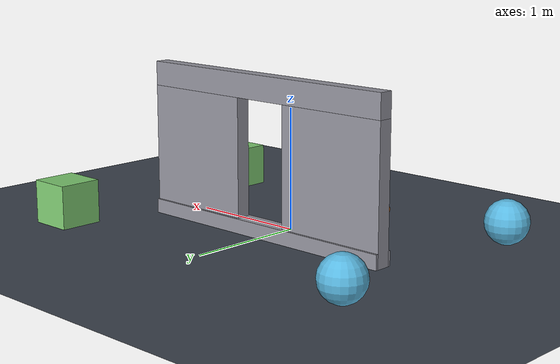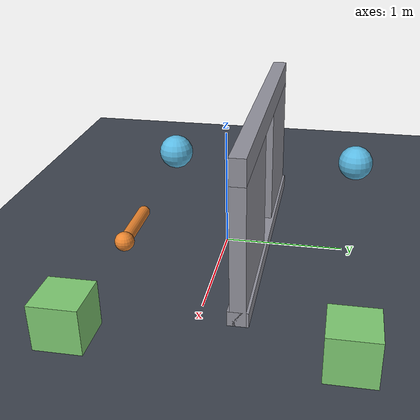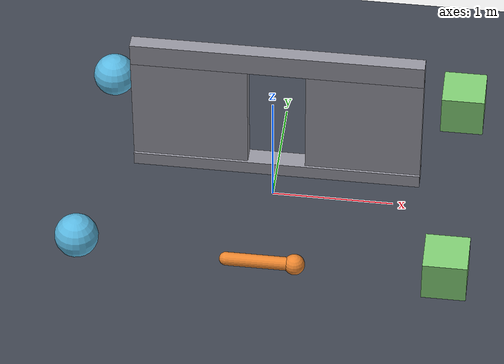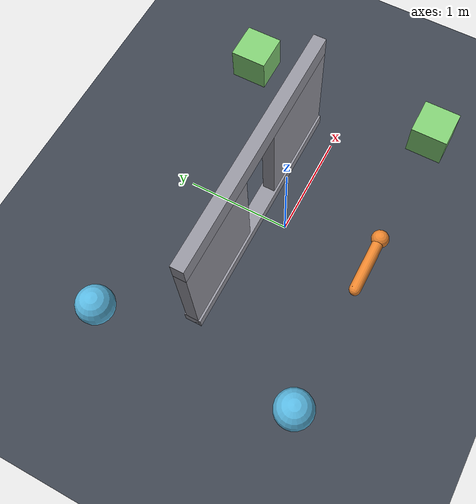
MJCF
<mujoco model="perturb_ghost">
  <compiler angle="degree" autolimits="true"/>

  <visual>
    <headlight ambient="0.26 0.26 0.26" diffuse="0.42 0.42 0.42" specular="0.4 0.4 0.4"/>
    <quality shadowsize="4096" numslices="28" numstacks="16"/>
    <map znear="0.02" zfar="40" shadowclip="1.2" shadowscale="0.7"/>
  </visual>

  <asset>
    <texture name="grid" type="2d" builtin="checker" width="512" height="512"
             rgb1="0.19 0.21 0.25" rgb2="0.29 0.32 0.37"/>
    <material name="grid" texture="grid" texrepeat="1 1" texuniform="true"/>
    <material name="rod" rgba="0.92 0.52 0.18 1" specular="0.6" shininess="0.7"/>
    <material name="wall" rgba="0.58 0.58 0.62 1" specular="0.15" shininess="0.25"/>
    <material name="ref" rgba="0.35 0.72 0.88 1" specular="0.5" shininess="0.6"/>
    <material name="ref2" rgba="0.50 0.80 0.45 1" specular="0.5" shininess="0.6"/>
  </asset>

  <worldbody>
    <light name="sun" type="directional" pos="2 -3.5 5" dir="-0.3 0.5 -1"
           diffuse="0.72 0.72 0.72" specular="0.3 0.3 0.3" castshadow="true"/>

    <geom name="floor" type="plane" size="0 0 0.05" material="grid"/>

    <body name="rod" pos="0 -0.85 0.06">
      <freejoint name="rod"/>
      <geom name="rod" type="capsule" fromto="-0.28 0 0 0.28 0 0" size="0.055" mass="0.6"
            material="rod"/>

      <geom name="rod_head" type="sphere" pos="0.28 0 0" size="0.085" mass="0.2" material="rod"/>
    </body>

    <geom name="wall_left" type="box" pos="-0.72 0.30 0.55" size="0.48 0.06 0.55"
          material="wall"/>
    <geom name="wall_right" type="box" pos="0.72 0.30 0.55" size="0.48 0.06 0.55"
          material="wall"/>
    <geom name="wall_top" type="box" pos="0 0.30 1.20" size="1.20 0.06 0.10" material="wall"/>
    <geom name="wall_base" type="box" pos="0 0.30 0.06" size="1.20 0.08 0.06" material="wall"/>

    <body name="ref_ball" pos="-1.50 -0.85 0.18">
      <geom name="ref_ball" type="sphere" size="0.18" material="ref"/>
    </body>
    <body name="ref_box" pos="1.50 -0.85 0.18">
      <geom name="ref_box" type="box" size="0.18 0.18 0.18" material="ref2"/>
    </body>
    <body name="ref_ball_far" pos="-1.50 1.10 0.18">
      <geom name="ref_ball_far" type="sphere" size="0.18" material="ref"/>
    </body>
    <body name="ref_box_far" pos="1.50 1.10 0.18">
      <geom name="ref_box_far" type="box" size="0.18 0.18 0.18" material="ref2"/>
    </body>

    <camera name="perturb" pos="0.10 -2.90 1.30" xyaxes="1 0 0 0 0.40 0.92"/>
  </worldbody>
</mujoco>
